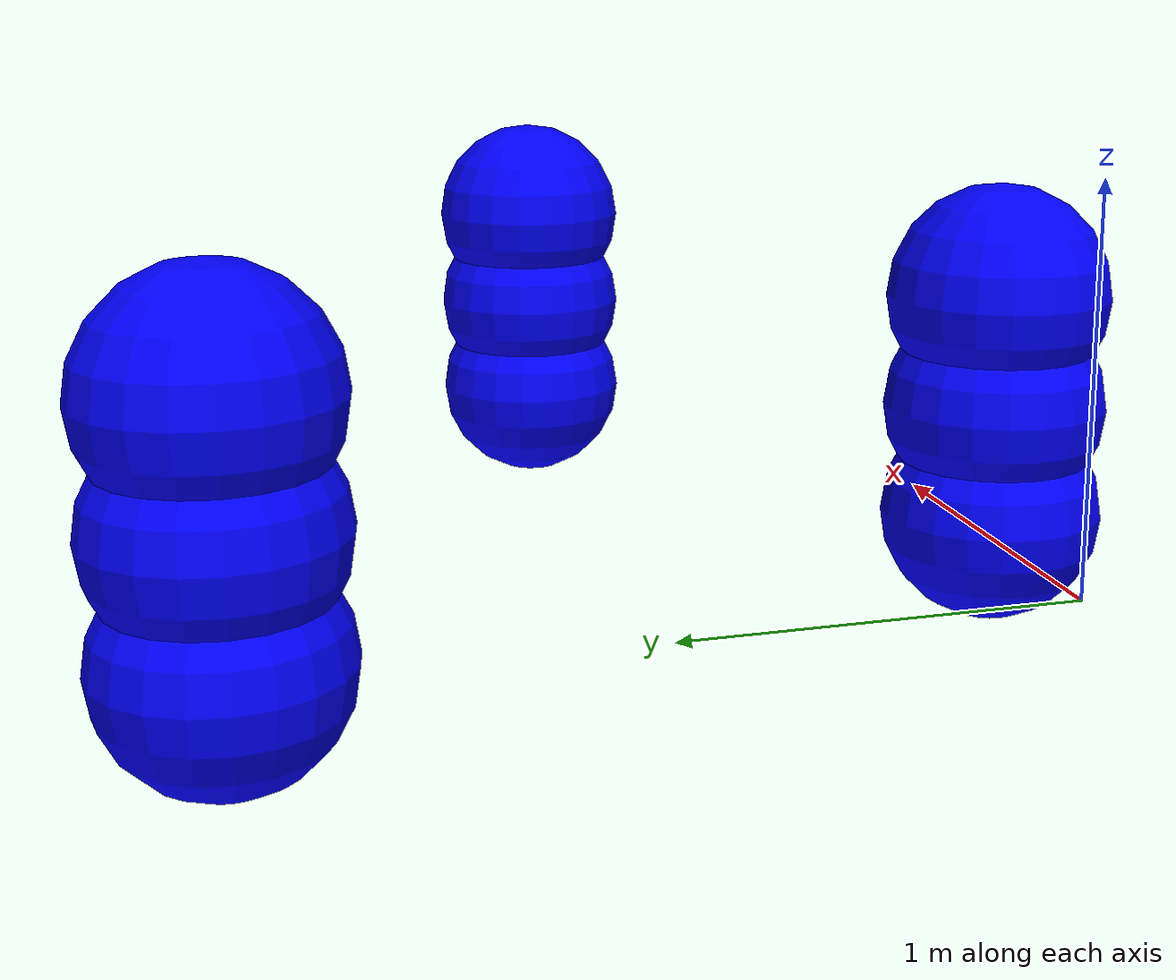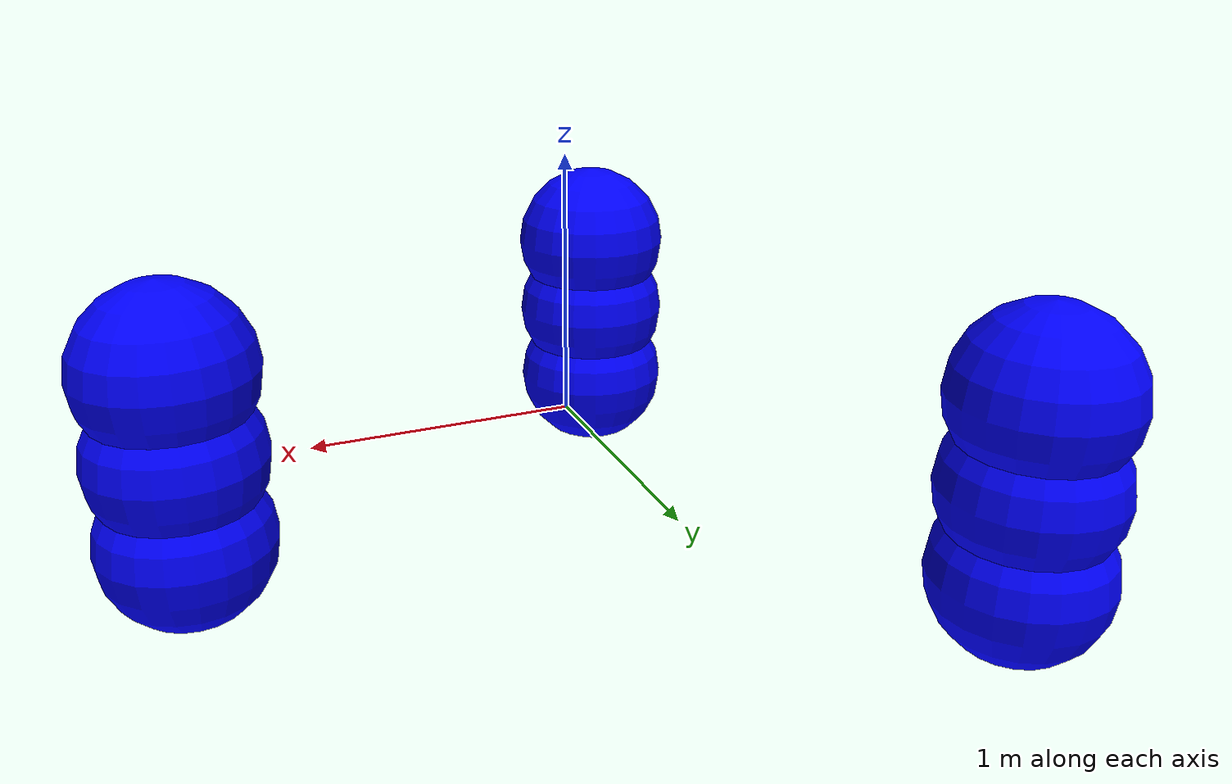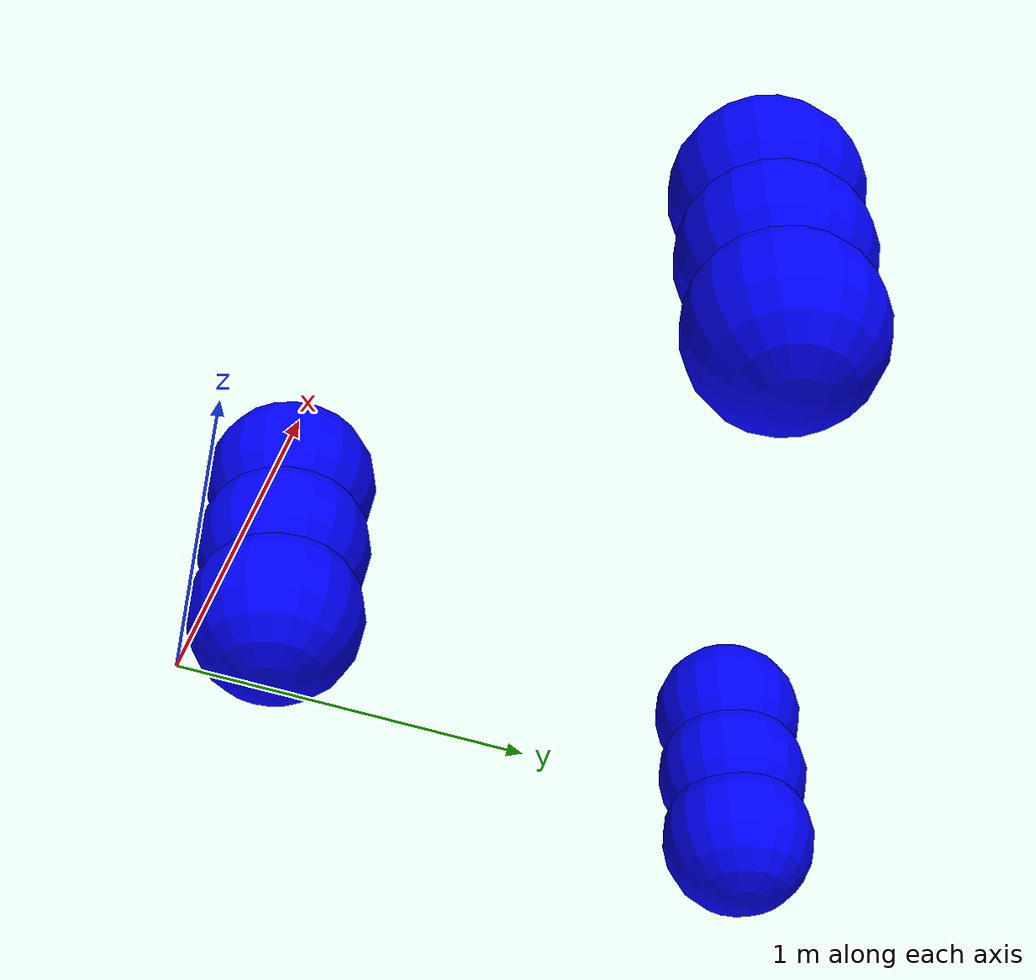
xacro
<?xml version="1.0" encoding="utf-8"?>
<robot name="obstacles" xmlns:xacro="http://wiki.ros.org/xacro">
  <material name="red">
    <color rgba="0.0 0.0 1.0 1.0"/>
  </material>
  <material name="green">
    <color rgba="0.0 1.0 0.0 1.0"/>
  </material>

  <!-- It is convenient to use a macro to avoid accidental mismatches between visual and collision geometry -->
  <xacro:macro name="obstacle_link" params="name material *origin *geometry">
    <link name="${name}">
      <collision>
        <origin rpy="0 0 0" xyz="0 0 0"/>
        <xacro:insert_block name="geometry" />
      </collision>
      <visual>
        <origin rpy="0 0 0" xyz="0 0 0"/>
        <xacro:insert_block name="geometry" />
        <material name="${material}"/>
      </visual>
    </link>
    <joint name="${name}_joint" type="fixed">
      <parent link="obstacle_base_link"/>
      <child link="${name}"/>
      <xacro:insert_block name="origin" />
    </joint>
  </xacro:macro>

  <link name="obstacle_base_link"></link>

  <!-- For the experimental setup figure. -->

  <!-- IMPORTANT: collision avoidance is much more numerically stable for the solver when the collision objects are spheres. Make everything a sphere! -->
  <xacro:obstacle_link name="sphere1_bottom_link" material="red">
    <origin rpy="0 0 0" xyz="0 0.25 0.25"/>
    <geometry>
      <sphere radius="0.25"/>
    </geometry>
  </xacro:obstacle_link>

  <xacro:obstacle_link name="sphere1_top_link" material="red">
    <origin rpy="0 0 0" xyz="0 0.25 0.75"/>
    <geometry>
      <sphere radius="0.25"/>
    </geometry>
  </xacro:obstacle_link>

  <xacro:obstacle_link name="sphere1_middle_link" material="red">
    <origin rpy="0 0 0" xyz="0 0.25 0.5"/>
    <geometry>
      <sphere radius="0.25"/>
    </geometry>
  </xacro:obstacle_link>

  <xacro:obstacle_link name="sphere2_bottom_link" material="red">
    <origin rpy="0 0 0" xyz="1.5 1 0.25"/>
    <geometry>
      <sphere radius="0.25"/>
    </geometry>
  </xacro:obstacle_link>

  <xacro:obstacle_link name="sphere2_middle_link" material="red">
    <origin rpy="0 0 0" xyz="1.5 1 0.5"/>
    <geometry>
      <sphere radius="0.25"/>
    </geometry>
  </xacro:obstacle_link>

  <xacro:obstacle_link name="sphere2_top_link" material="red">
    <origin rpy="0 0 0" xyz="1.5 1 0.75"/>
    <geometry>
      <sphere radius="0.25"/>
    </geometry>
  </xacro:obstacle_link>

  <xacro:obstacle_link name="sphere3_bottom_link" material="red">
    <origin rpy="0 0 0" xyz="-0.5 2 0.25"/>
    <geometry>
      <sphere radius="0.25"/>
    </geometry>
  </xacro:obstacle_link>

  <xacro:obstacle_link name="sphere3_top_link" material="red">
    <origin rpy="0 0 0" xyz="-0.5 2 0.75"/>
    <geometry>
      <sphere radius="0.25"/>
    </geometry>
  </xacro:obstacle_link>

  <xacro:obstacle_link name="sphere3_middle_link" material="red">
    <origin rpy="0 0 0" xyz="-0.5 2 0.5"/>
    <geometry>
      <sphere radius="0.25"/>
    </geometry>
  </xacro:obstacle_link>

</robot>
